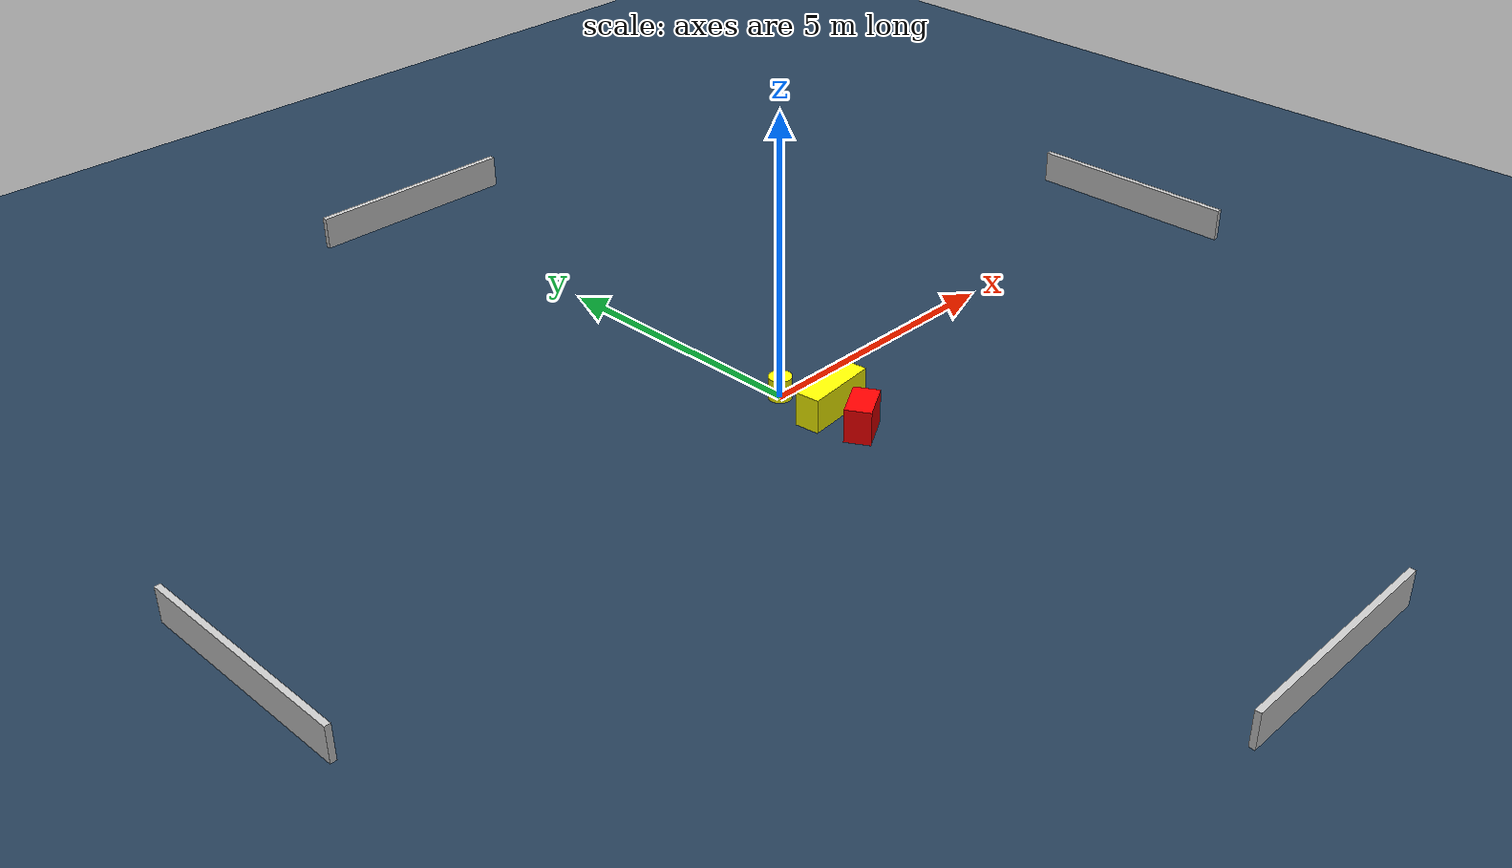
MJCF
<?xml version="1.0" ?>
<mujoco model="generated_environment">
  <option timestep="0.01" integrator="RK4" cone="elliptic"/>
  <default>
    <geom density="1"/>
  </default>
  <asset>
    <texture builtin="gradient" height="3072" name="skybox" rgb1="0.3 0.5 0.7" rgb2="0 0 0" type="skybox" width="512"/>
    <texture builtin="checker" height="300" name="groundplane" rgb1="0.2 0.3 0.4" rgb2="0.1 0.2 0.3" type="2d" width="300"/>
    <material name="groundplane" reflectance="0.2" texrepeat="5 5" texture="groundplane"/>
  </asset>
  <worldbody>
    <light dir="0 0 -1" directional="true" pos="0 0 1.5"/>
    <geom condim="3" friction="0.5 0.005 0.001" material="groundplane" name="floor" pos="0 0 0" size="0 0 0.05" type="plane"/>
    <body name="walls">
      <geom name="wall_1" condim="4" pos="-10.0 0.0 0.3" rgba="0.800000011920929 0.800000011920929 0.800000011920929 1.0" size="0.05 2.0 0.3" type="box"/>
      <geom name="wall_2" condim="4" pos="10.0 0.0 0.3" rgba="0.800000011920929 0.800000011920929 0.800000011920929 1.0" size="0.05 2.0 0.3" type="box"/>
      <geom name="wall_3" condim="4" pos="0.0 -10.0 0.3" rgba="0.800000011920929 0.800000011920929 0.800000011920929 1.0" size="2.0 0.05 0.3" type="box"/>
      <geom name="wall_4" condim="4" pos="0.0 10.0 0.3" rgba="0.800000011920929 0.800000011920929 0.800000011920929 1.0" size="2.0 0.05 0.3" type="box"/>
    </body>
    <body name="robot">
      <joint name="joint_x" type="slide" pos="0 0 0" axis="1 0 0"/>
      <joint name="joint_y" type="slide" pos="0 0 0" axis="0 1 0"/>
      <geom name="robot" type="cylinder" pos="0.0 0.0 0.2" size="0.2 0.2 0.0" mass="5.0" friction="1.0 0.005 0.0001" condim="4" rgba="1.0 1.0 0.0 1.0"/>
    </body>
    <body name="obstacle_1_movable">
      <geom name="obstacle_1_movable" condim="4" pos="0.22975847969786445 -0.9109571427288808 0.3" euler="0 0 185.91200605024926" friction="0.0 0.005 0.001" rgba="1.0 1.0 0.0 1.0" size="0.6492527747741083 0.220539470514192 0.3" type="box" mass="0.1"/>
      <joint type="free"/>
    </body>
    <body name="obstacle_2_static">
      <geom name="obstacle_2_static" condim="4" pos="0.12440755767488378 -1.6722456316509102 0.3" euler="0 0 210.05665453074934" friction="0.0 0.005 0.001" rgba="1.0 0.0 0.0 1.0" size="0.3629985734740204 0.22284906269930077 0.3" type="box"/>
    </body>
  </worldbody>
  <actuator>
    <motor name="actuator_x" joint="joint_x" gear="1" ctrlrange="-1 1"/>
    <motor name="actuator_y" joint="joint_y" gear="1" ctrlrange="-1 1"/>
  </actuator>
</mujoco>
